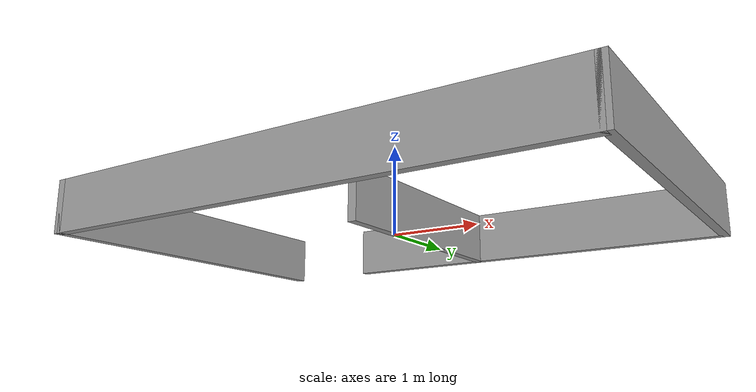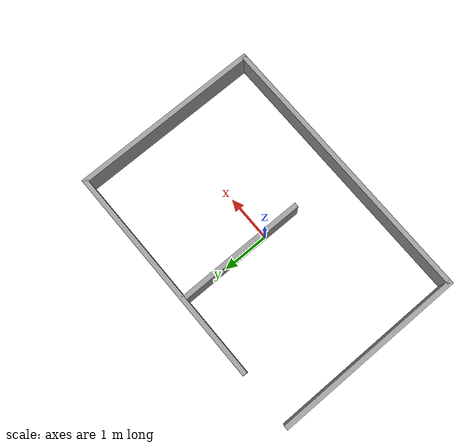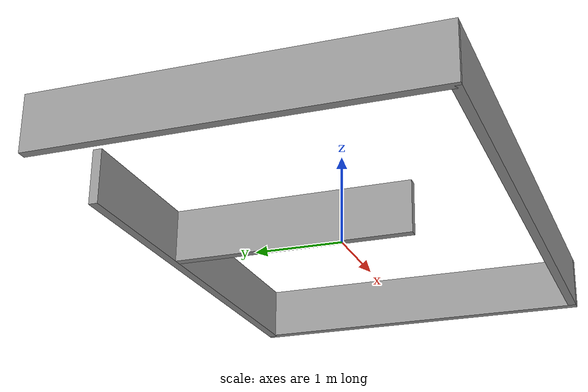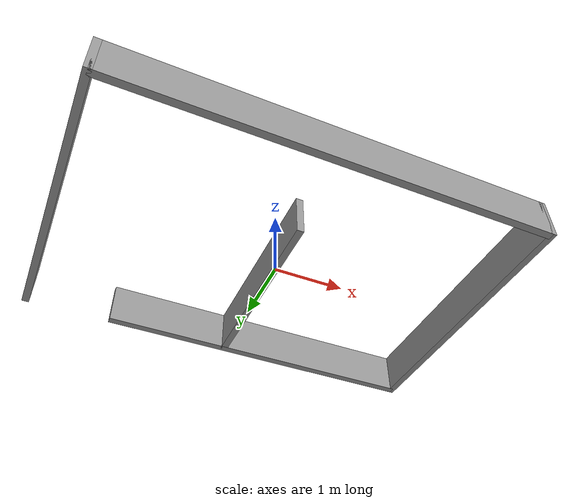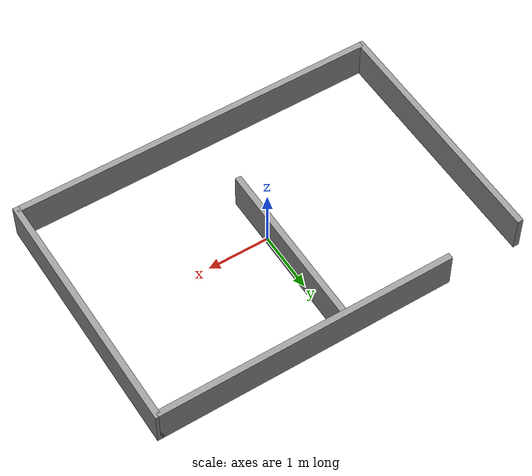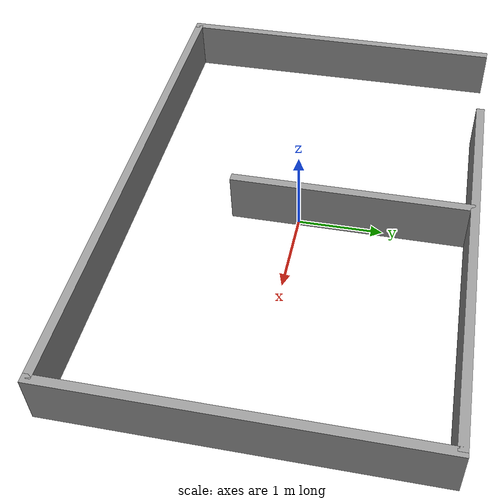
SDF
<?xml version="1.0" ?>
<sdf version="1.5">
  <model name="wrc_frame">
    <static>true</static>
    <link name="link">
      <inertial>
        <mass>0.0</mass>
        <inertia>
          <ixx>1</ixx>
          <ixy>0.0</ixy>
          <ixz>0.0</ixz>
          <iyy>1</iyy>
          <iyz>0.0</iyz>
          <izz>1</izz>
        </inertia>
      </inertial>
      <collision name="wall_back">
        <pose>0.6 2.0 0.3 0 0 0</pose>
        <geometry>
          <box>
            <size>4.8 0.1 0.6</size>
          </box>
        </geometry>
      </collision>
      <visual name="wall_back_v">
        <pose>0.6 2.0 0.3 0 0 0</pose>
        <geometry>
          <box>
            <size>4.8 0.1 0.6</size>
          </box>
        </geometry>
        <material>
          <script>
            <uri>file://media/materials/scripts/gazebo.material</uri>
            <name>Gazebo/Gray</name>
          </script>
        </material>
      </visual>
      <collision name="wall_front">
        <pose>0.0 -2.0 0.3 0 0 0</pose>
        <geometry>
          <box>
            <size>6.0 0.1 0.6</size>
          </box>
        </geometry>
      </collision>
      <visual name="wall_front_v">
        <pose>0.0 -2.0 0.3 0 0 0</pose>
        <geometry>
          <box>
            <size>6.0 0.1 0.6</size>
          </box>
        </geometry>
        <material>
          <script>
            <uri>file://media/materials/scripts/gazebo.material</uri>
            <name>Gazebo/Gray</name>
          </script>
        </material>
      </visual>
      <collision name="wall_left">
        <pose>-3.0 0.0 0.3 0 0 0</pose>
        <geometry>
          <box>
            <size>0.1 4.1 0.6</size>
          </box>
        </geometry>
      </collision>
      <visual name="wall_left_v">
        <pose>-3.0 0.0 0.3 0 0 0</pose>
        <geometry>
          <box>
            <size>0.1 4.1 0.6</size>
          </box>
        </geometry>
        <material>
          <script>
            <uri>file://media/materials/scripts/gazebo.material</uri>
            <name>Gazebo/Gray</name>
          </script>
        </material>
      </visual>
      <collision name="wall_right">
        <pose>3.0 0.0 0.3 0 0 0</pose>
        <geometry>
          <box>
            <size>0.1 4.1 0.6</size>
          </box>
        </geometry>
      </collision>
      <visual name="wall_right_v">
        <pose>3.0 0.0 0.3 0 0 0</pose>
        <geometry>
          <box>
            <size>0.1 4.1 0.6</size>
          </box>
        </geometry>
        <material>
          <script>
            <uri>file://media/materials/scripts/gazebo.material</uri>
            <name>Gazebo/Gray</name>
          </script>
        </material>
      </visual>
      <collision name="wall_center">
        <pose>0.0 0.6 0.3 0 0 0</pose>
        <geometry>
          <box>
            <size>0.1 2.8 0.6</size>
          </box>
        </geometry>
      </collision>
      <visual name="wall_center_v">
        <pose>0.0 0.6 0.3 0 0 0</pose>
        <geometry>
          <box>
            <size>0.1 2.8 0.6</size>
          </box>
        </geometry>
        <material>
          <script>
            <uri>file://media/materials/scripts/gazebo.material</uri>
            <name>Gazebo/Gray</name>
          </script>
        </material>
      </visual>
    </link>
  </model>
</sdf>
